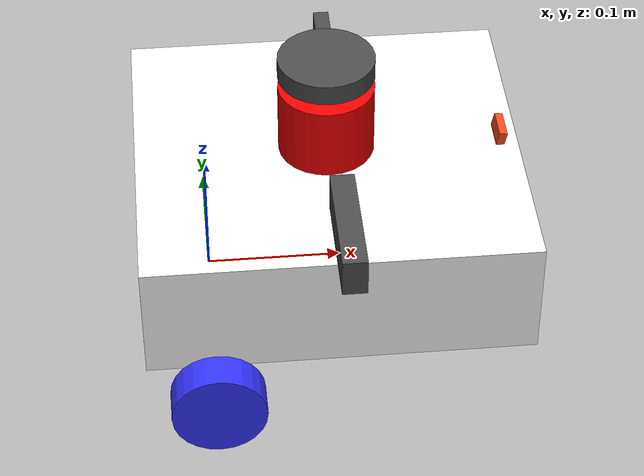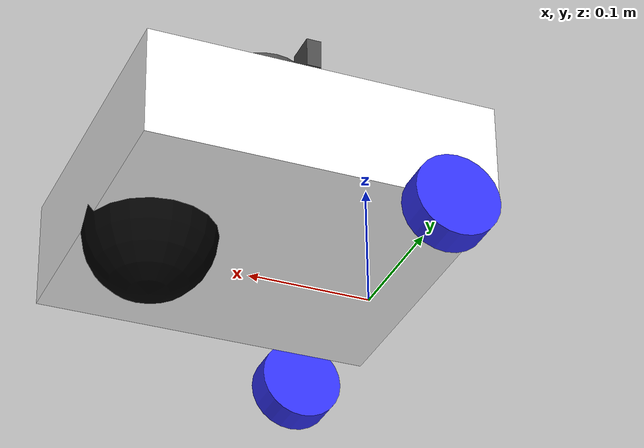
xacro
<?xml version="1.0"?>
<robot xmlns:xacro="http://www.ros.org/wiki/xacro" name="billiebot">

    <!-- Arguments -->
    <xacro:arg name="use_sim"    default="false"/>
    <xacro:arg name="use_lidar"  default="true"/>
    <xacro:arg name="use_oakd"   default="true"/>
    <xacro:arg name="use_noir"   default="true"/>
    <xacro:arg name="use_thermal" default="true"/>
    <xacro:arg name="use_mic"    default="true"/>
    <xacro:arg name="use_imu"    default="false"/>

    <!-- Core robot structure -->
    <xacro:include filename="robot_core.xacro"/>

    <!-- Sensor macros -->
    <xacro:include filename="lidar.xacro"/>
    <xacro:include filename="oakd_lite.xacro"/>
    <xacro:include filename="noir_camera.xacro"/>
    <xacro:include filename="thermal.xacro"/>
    <xacro:include filename="mic_array.xacro"/>
    <xacro:include filename="imu.xacro"/>

    <!-- RPLidar A1 — mounted on top of chassis -->
    <xacro:if value="$(arg use_lidar)">
        <xacro:rplidar_a1 parent="chassis" use_sim="$(arg use_sim)">
            <origin xyz="0.09 0.0 0.13575" rpy="0 0 0"/>
        </xacro:rplidar_a1>
    </xacro:if>

    <!-- OAK-D Lite — front of chassis, replaces Pi Camera v2 position -->
    <!-- TODO(measure): Verify exact mount position on chassis -->
    <xacro:if value="$(arg use_oakd)">
        <xacro:oakd_lite parent="chassis">
            <origin xyz="0.10325 -0.115 0.1235" rpy="0 0 0"/>
        </xacro:oakd_lite>
    </xacro:if>

    <!-- Pi Camera 3 NoIR — secondary camera for low-light -->
    <!-- TODO(measure): Verify exact mount position -->
    <xacro:if value="$(arg use_noir)">
        <xacro:noir_camera parent="chassis">
            <origin xyz="0.10325 0.115 0.1235" rpy="0 0 0"/>
        </xacro:noir_camera>
    </xacro:if>

    <!-- MLX90640 thermal camera — near front, angled slightly down -->
    <!-- TODO(measure): Verify exact mount position -->
    <xacro:if value="$(arg use_thermal)">
        <xacro:thermal_camera parent="chassis">
            <origin xyz="0.22 0.0 0.11" rpy="0 0.2 0"/>
        </xacro:thermal_camera>
    </xacro:if>

    <!-- ReSpeaker mic array — top of chassis, centered -->
    <!-- TODO(measure): Verify exact mount position -->
    <xacro:if value="$(arg use_mic)">
        <xacro:mic_array parent="chassis">
            <origin xyz="0.09 0.0 0.18" rpy="0 0 0"/>
        </xacro:mic_array>
    </xacro:if>

    <!-- BNO055 IMU — on chassis, near center of rotation -->
    <!-- NOTE: Requires encoder rewire (A4/A5 → D4/D7) before enabling -->
    <xacro:if value="$(arg use_imu)">
        <xacro:bno055_imu parent="chassis">
            <origin xyz="0.0 0.0 0.05" rpy="0 0 0"/>
        </xacro:bno055_imu>
    </xacro:if>

</robot>

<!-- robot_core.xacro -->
<robot xmlns:xacro="http://www.ros.org/wiki/xacro">

    <xacro:include filename="inertial_macros.xacro" />

    <!-- Materials -->
    <material name="white"><color rgba="1 1 1 1"/></material>
    <material name="orange"><color rgba="1 0.3 0.1 1"/></material>
    <material name="blue"><color rgba="0.2 0.2 1 1"/></material>
    <material name="black"><color rgba="0 0 0 1"/></material>
    <material name="red"><color rgba="1 0 0 1"/></material>
    <material name="dark_grey"><color rgba="0.3 0.3 0.3 1"/></material>

    <!-- BASE LINK -->
    <link name="base_link"/>

    <!-- CHASSIS -->
    <joint name="chassis_joint" type="fixed">
        <parent link="base_link"/>
        <child link="chassis"/>
        <origin xyz="0 0 0"/>
    </joint>

    <link name="chassis">
        <visual>
            <origin xyz="0.09 0 0.0635" rpy="0 0 0"/>
            <geometry>
                <box size="0.28 0.26 0.09"/>
            </geometry>
            <material name="white"/>
        </visual>
        <collision>
            <origin xyz="0.09 0 0.0635" rpy="0 0 0"/>
            <geometry>
                <box size="0.28 0.26 0.09"/>
            </geometry>
        </collision>
        <xacro:inertial_box mass="0.5" x="0.28" y="0.26" z="0.09">
            <origin xyz="0.09 0 0.0635" rpy="0 0 0"/>
        </xacro:inertial_box>
    </link>

    <!-- LEFT WHEEL -->
    <joint name="left_wheel_joint" type="continuous">
        <parent link="base_link"/>
        <child link="left_wheel"/>
        <origin xyz="0 0.149 0" rpy="-${pi/2} 0 0"/>
        <axis xyz="0 0 1"/>
        <limit effort="1.0" velocity="10.0"/>
    </joint>

    <link name="left_wheel">
        <visual>
            <geometry>
                <cylinder length="0.026" radius="0.034"/>
            </geometry>
            <material name="blue"/>
        </visual>
        <collision>
            <geometry>
                <sphere radius="0.034"/>
            </geometry>
        </collision>
        <xacro:inertial_cylinder mass="0.1" length="0.026" radius="0.034">
            <origin xyz="0 0 0" rpy="0 0 0"/>
        </xacro:inertial_cylinder>
    </link>

    <!-- RIGHT WHEEL -->
    <joint name="right_wheel_joint" type="continuous">
        <parent link="base_link"/>
        <child link="right_wheel"/>
        <origin xyz="0 -0.149 0" rpy="${pi/2} 0 0"/>
        <axis xyz="0 0 -1"/>
        <limit effort="1.0" velocity="10.0"/>
    </joint>

    <link name="right_wheel">
        <visual>
            <geometry>
                <cylinder length="0.026" radius="0.034"/>
            </geometry>
            <material name="blue"/>
        </visual>
        <collision>
            <geometry>
                <sphere radius="0.034"/>
            </geometry>
        </collision>
        <xacro:inertial_cylinder mass="0.1" length="0.026" radius="0.034">
            <origin xyz="0 0 0" rpy="0 0 0"/>
        </xacro:inertial_cylinder>
    </link>

    <!-- CASTER WHEEL -->
    <joint name="caster_wheel_joint" type="fixed">
        <parent link="chassis"/>
        <child link="caster_wheel"/>
        <origin xyz="0.18 0 0.0185" rpy="0 0 0"/>
    </joint>

    <link name="caster_wheel">
        <visual>
            <geometry>
                <sphere radius="0.0525"/>
            </geometry>
            <material name="black"/>
        </visual>
        <collision>
            <geometry>
                <sphere radius="0.0525"/>
            </geometry>
        </collision>
        <xacro:inertial_sphere mass="0.1" radius="0.0525">
            <origin xyz="0 0 0" rpy="0 0 0"/>
        </xacro:inertial_sphere>
    </link>

    <gazebo reference="caster_wheel">
        <mu1 value="0.0"/>
        <mu2 value="0.0"/>
    </gazebo>

</robot>

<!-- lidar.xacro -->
<robot xmlns:xacro="http://www.ros.org/wiki/xacro">

    <xacro:macro name="rplidar_a1" params="parent use_sim:=false *origin">

        <joint name="laser_joint" type="fixed">
            <xacro:insert_block name="origin"/>
            <parent link="${parent}"/>
            <child link="laser_frame"/>
        </joint>

        <link name="laser_frame">
            <visual>
                <geometry>
                    <cylinder radius="0.035" length="0.0545"/>
                </geometry>
                <material name="red"/>
            </visual>
            <collision>
                <geometry>
                    <cylinder radius="0.035" length="0.0545"/>
                </geometry>
            </collision>
            <xacro:inertial_cylinder mass="0.170" length="0.0545" radius="0.035">
                <origin xyz="0 0 0" rpy="0 0 0"/>
            </xacro:inertial_cylinder>
        </link>

        <xacro:if value="${use_sim}">
            <gazebo reference="laser_frame">
                <sensor name="laser" type="gpu_lidar">
                    <pose>0 0 0 0 0 0</pose>
                    <topic>/scan</topic>
                    <gz_frame_id>laser_frame</gz_frame_id>
                    <update_rate>5</update_rate>
                    <ray>
                        <scan>
                            <horizontal>
                                <samples>360</samples>
                                <resolution>1</resolution>
                                <min_angle>-3.14159</min_angle>
                                <max_angle>3.14159</max_angle>
                            </horizontal>
                            <vertical>
                                <samples>1</samples>
                                <resolution>0.1</resolution>
                                <min_angle>0</min_angle>
                                <max_angle>0</max_angle>
                            </vertical>
                        </scan>
                        <range>
                            <min>0.15</min>
                            <max>12.0</max>
                            <resolution>0.01</resolution>
                        </range>
                        <noise>
                            <type>gaussian</type>
                            <mean>0.0</mean>
                            <stddev>0.01</stddev>
                        </noise>
                    </ray>
                    <always_on>1</always_on>
                    <visualize>true</visualize>
                </sensor>
            </gazebo>
        </xacro:if>

    </xacro:macro>

</robot>

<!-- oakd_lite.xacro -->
<robot xmlns:xacro="http://www.ros.org/wiki/xacro">

    <!-- OAK-D Lite stereo depth camera (replaces Pi Camera v2)
         Dimensions: 91 x 28 x 17.5 mm, mass ~61g
         H-FoV: 73 deg (RGB), 72 deg (stereo pair)
         Stereo baseline: 75 mm -->

    <xacro:macro name="oakd_lite" params="parent *origin">

        <xacro:property name="oakd_width"  value="0.091"/>
        <xacro:property name="oakd_height" value="0.028"/>
        <xacro:property name="oakd_depth"  value="0.0175"/>
        <xacro:property name="oakd_mass"   value="0.061"/>

        <joint name="oakd_joint" type="fixed">
            <xacro:insert_block name="origin"/>
            <parent link="${parent}"/>
            <child link="oakd_link"/>
        </joint>

        <link name="oakd_link">
            <visual>
                <origin xyz="${-oakd_depth/2} 0 0" rpy="0 0 0"/>
                <geometry>
                    <box size="${oakd_depth} ${oakd_width} ${oakd_height}"/>
                </geometry>
                <material name="dark_grey"/>
            </visual>
            <collision>
                <origin xyz="${-oakd_depth/2} 0 0" rpy="0 0 0"/>
                <geometry>
                    <box size="${oakd_depth} ${oakd_width} ${oakd_height}"/>
                </geometry>
            </collision>
            <xacro:inertial_box mass="${oakd_mass}" x="${oakd_depth}" y="${oakd_width}" z="${oakd_height}">
                <origin xyz="${-oakd_depth/2} 0 0" rpy="0 0 0"/>
            </xacro:inertial_box>
        </link>

        <!-- Optical frame (REP-0103) -->
        <joint name="oakd_optical_joint" type="fixed">
            <parent link="oakd_link"/>
            <child link="oakd_link_optical"/>
            <origin xyz="0 0 0" rpy="${-pi/2} 0 ${-pi/2}"/>
        </joint>

        <link name="oakd_link_optical"/>

    </xacro:macro>

</robot>

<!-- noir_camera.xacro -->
<robot xmlns:xacro="http://www.ros.org/wiki/xacro">

    <!-- Raspberry Pi Camera 3 NoIR (no IR filter, for low-light detection)
         Dimensions: 25 x 24 x 11.5 mm, mass ~3g
         Sensor: Sony IMX708, 12MP, H-FoV 66 deg -->

    <xacro:macro name="noir_camera" params="parent *origin">

        <xacro:property name="noir_width"  value="0.025"/>
        <xacro:property name="noir_height" value="0.024"/>
        <xacro:property name="noir_depth"  value="0.0115"/>
        <xacro:property name="noir_mass"   value="0.003"/>

        <joint name="noir_joint" type="fixed">
            <xacro:insert_block name="origin"/>
            <parent link="${parent}"/>
            <child link="noir_link"/>
        </joint>

        <link name="noir_link">
            <visual>
                <origin xyz="${-noir_depth/2} 0 0" rpy="0 0 0"/>
                <geometry>
                    <box size="${noir_depth} ${noir_width} ${noir_height}"/>
                </geometry>
                <material name="dark_grey"/>
            </visual>
        </link>

        <joint name="noir_optical_joint" type="fixed">
            <parent link="noir_link"/>
            <child link="noir_link_optical"/>
            <origin xyz="0 0 0" rpy="${-pi/2} 0 ${-pi/2}"/>
        </joint>

        <link name="noir_link_optical"/>

    </xacro:macro>

</robot>

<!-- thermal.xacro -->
<robot xmlns:xacro="http://www.ros.org/wiki/xacro">

    <!-- MLX90640 thermal camera (32x24 pixel, 110 deg FoV)
         Breakout board ~24 x 16 x 6 mm, mass ~5g -->

    <xacro:macro name="thermal_camera" params="parent *origin">

        <xacro:property name="thermal_width"  value="0.024"/>
        <xacro:property name="thermal_height" value="0.016"/>
        <xacro:property name="thermal_depth"  value="0.006"/>
        <xacro:property name="thermal_mass"   value="0.005"/>

        <joint name="thermal_joint" type="fixed">
            <xacro:insert_block name="origin"/>
            <parent link="${parent}"/>
            <child link="thermal_link"/>
        </joint>

        <link name="thermal_link">
            <visual>
                <origin xyz="${-thermal_depth/2} 0 0" rpy="0 0 0"/>
                <geometry>
                    <box size="${thermal_depth} ${thermal_width} ${thermal_height}"/>
                </geometry>
                <material name="orange"/>
            </visual>
        </link>

        <joint name="thermal_optical_joint" type="fixed">
            <parent link="thermal_link"/>
            <child link="thermal_link_optical"/>
            <origin xyz="0 0 0" rpy="${-pi/2} 0 ${-pi/2}"/>
        </joint>

        <link name="thermal_link_optical"/>

    </xacro:macro>

</robot>

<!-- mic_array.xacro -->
<robot xmlns:xacro="http://www.ros.org/wiki/xacro">

    <!-- ReSpeaker USB Mic Array v2.0 (circular, 4-mic)
         Diameter: 70mm, height: ~15mm, mass ~50g -->

    <xacro:macro name="mic_array" params="parent *origin">

        <xacro:property name="mic_radius" value="0.035"/>
        <xacro:property name="mic_height" value="0.015"/>
        <xacro:property name="mic_mass"   value="0.050"/>

        <joint name="mic_joint" type="fixed">
            <xacro:insert_block name="origin"/>
            <parent link="${parent}"/>
            <child link="mic_link"/>
        </joint>

        <link name="mic_link">
            <visual>
                <geometry>
                    <cylinder radius="${mic_radius}" length="${mic_height}"/>
                </geometry>
                <material name="dark_grey"/>
            </visual>
            <xacro:inertial_cylinder mass="${mic_mass}" length="${mic_height}" radius="${mic_radius}">
                <origin xyz="0 0 0" rpy="0 0 0"/>
            </xacro:inertial_cylinder>
        </link>

    </xacro:macro>

</robot>
